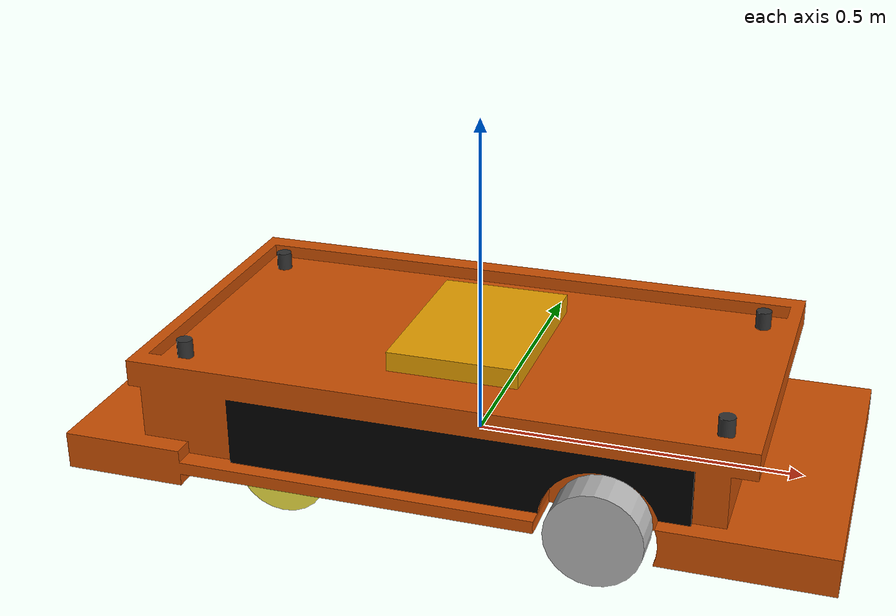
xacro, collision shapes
<?xml version="1.0" ?>
<robot name="logistic ackermann robot"
  xmlns:xacro="http://ros.org/wiki/xacro">

  <xacro:arg name="namespace" default="logistic_robot"/>
  <xacro:property name="namespace" value="$(arg namespace)"/>

  <xacro:include filename="$(find custom_robots)/models/logistic_ackermann_robot/logistic_ackermann_robot_gz.urdf.xacro"/>
  <xacro:include filename="$(find custom_robots)/models/logistic_ackermann_robot/logistic_ackermann_robot_common.urdf.xacro"/>

  <xacro:logistic_ackermann_robot namespace="${namespace}"/>
</robot>

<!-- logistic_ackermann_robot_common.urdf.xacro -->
<robot xmlns:xacro="http://ros.org/wiki/xacro">
  <xacro:include filename="$(find custom_robots)/models/logistic_ackermann_robot/logistic_ackermann_robot_gz.urdf.xacro"/>

  <xacro:macro name="logistic_ackermann_robot" params="namespace">
    <link name="base_link" />

    <link name="chassis_link">
      <inertial>
        <origin rpy="0 0 0" xyz="0.07307 -1e-06 0.65096"/>
        <mass value="1580"/>
        <inertia ixx="442.769" ixy="0" ixz="62.5206" iyy="1997.86" iyz="0" izz="2238.05"/>
      </inertial>
      <collision>
        <origin rpy="0 0 -1.5707963" xyz="0 0 0"/>
        <geometry>
          <mesh filename="$(find custom_robots)/models/logistic_ackermann_robot/meshes/chassis.dae" scale="0.5 0.5 0.5"/>
        </geometry>
        <gz>
          <surface>
            <friction>
              <ode>
                <mu>0.2</mu>
                <mu2>0.2</mu2>
              </ode>
            </friction>
          </surface>
        </gz>
      </collision>
      <visual>
        <origin rpy="0 0 -1.5707963" xyz="0 0 0"/>
        <geometry>
          <mesh filename="$(find custom_robots)/models/logistic_ackermann_robot/meshes/chassis.dae" scale="0.5 0.5 0.5"/>
        </geometry>
      </visual>
    </link>

    <joint name="chassis_link_joint" type="fixed">
      <parent link="base_link"/>
      <child link="chassis_link"/>
    </joint>

    <joint name="bl_axle" type="continuous">
      <origin rpy="0 0 0" xyz="-0.244 0.18 0"/>
      <parent link="chassis_link"/>
      <child link="back_left_wheel_link"/>
      <axis xyz="0 1 0"/>
      <limit effort="1000" velocity="100"/>
      <dynamics friction="12.0316061502"/>
    </joint>

    <link name="back_left_wheel_link">
      <inertial>
        <origin rpy="0 0 0" xyz="0 0.0377  0"/>
        <mass value="24.5"/>
        <inertia ixx="1.04961" ixy="0" ixz="0" iyy="1.84514" iyz="0" izz="1.04961"/>
      </inertial>
      <collision>
        <origin rpy="1.57 0 0" xyz="0 0 0"/>
        <geometry>
          <cylinder radius="0.072" length="0.06"/>
        </geometry>
        <gz>
          <surface>
            <friction>
              <ode>
                <mu>1e+6</mu>
                <mu2>1e+6</mu2>
              </ode>
            </friction>
          </surface>
        </gz>
      </collision>
      <visual>
        <origin rpy="0 0 -1.57" xyz="0 0 0"/>
        <geometry>
          <mesh filename="$(find custom_robots)/models/logistic_ackermann_robot/meshes/wheel.dae" scale="0.5 0.5 0.5"/>
        </geometry>
      </visual>
    </link>

    <joint name="br_axle" type="continuous">
      <origin rpy="0 0 0" xyz="-0.244 -0.18 0"/>
      <parent link="chassis_link"/>
      <child link="back_right_wheel_link"/>
      <axis xyz="0 1 0"/>
      <limit effort="1000" velocity="100"/>
      <dynamics friction="12.0316061502"/>
    </joint>

    <link name="back_right_wheel_link">
      <inertial>
        <origin rpy="0 0 0" xyz="0 0.0377  0"/>
        <mass value="24.5"/>
        <inertia ixx="1.04961" ixy="0" ixz="0" iyy="1.84514" iyz="0" izz="1.04961"/>
      </inertial>
      <collision>
        <origin rpy="1.57 0 0" xyz="0 0 0"/>
        <geometry>
          <cylinder radius="0.072" length="0.06"/>
        </geometry>
        <gz>
          <surface>
            <friction>
              <ode>
                <mu>1e+6</mu>
                <mu2>1e+6</mu2>
              </ode>
            </friction>
          </surface>
        </gz>
      </collision>
      <visual>
        <origin rpy="0 0 -1.57" xyz="0 0 0"/>
        <geometry>
          <mesh filename="$(find custom_robots)/models/logistic_ackermann_robot/meshes/wheel.dae" scale="0.5 0.5 0.5"/>
        </geometry>
      </visual>
    </link>

    <joint name="l_steer" type="revolute">
      <origin rpy="0 0 0" xyz="0.244 0.236 0"/>
      <parent link="chassis_link"/>
      <child link="l_steer_1"/>
      <axis xyz="0 0 1"/>
      <limit lower="-0.95" upper="0.95" effort="1e6" velocity="10"/>
      <dynamics friction="18.0474092253" damping="0.01"/>
    </joint>

    <link name="l_steer_1">
      <origin rpy="0 -0 0" xyz="0 0 0"/>
      <inertial>
        <origin rpy="0 0 0" xyz="0 -0.003381 0.02162"/>
        <mass value="1"/>
        <inertia ixx="1" ixy="0" ixz="0" iyy="1" iyz="0" izz="1"/>
      </inertial>
    </link>

    <joint name="front_left_wheel_joint" type="continuous">
      <parent link="l_steer_1"/>
      <child link="front_left_wheel_link"/>
      <axis xyz="0 1 0"/>
      <limit effort="1000" velocity="100"/>
      <dynamics friction="12.0316061502"/>
    </joint>

    <link name="front_left_wheel_link">
      <inertial>
        <origin rpy="0 0 0" xyz="0 0.0377  0"/>
        <mass value="24.5"/>
        <inertia ixx="1.04961" ixy="0" ixz="0" iyy="1.84514" iyz="0" izz="1.04961"/>
      </inertial>
      <collision>
        <origin rpy="1.57 0 0" xyz="0 0 0"/>
        <geometry>
          <cylinder radius="0.072" length="0.06"/>
        </geometry>
        <gz>
          <surface>
            <friction>
              <ode>
                <mu>1e+6</mu>
                <mu2>1e+6</mu2>
              </ode>
            </friction>
          </surface>
        </gz>
      </collision>
      <visual>
        <origin rpy="0 0 -1.57" xyz="0 0 0"/>
        <geometry>
          <mesh filename="$(find custom_robots)/models/logistic_ackermann_robot/meshes/wheel.dae" scale="0.5 0.5 0.5"/>
        </geometry>
      </visual>
    </link>

    <joint name="r_steer" type="revolute">
      <origin rpy="0 0 0" xyz="0.244 -0.236 0"/>
      <parent link="chassis_link"/>
      <child link="r_steer_1"/>
      <axis xyz="0 0 1"/>
      <limit lower="-0.95" upper="0.95" effort="1e6" velocity="10"/>
      <dynamics friction="18.0474092253" damping="0.01"/>
    </joint>

    <link name="r_steer_1">
      <origin rpy="0 -0 0" xyz="0 0 0"/>
      <inertial>
        <origin rpy="0 0 0" xyz="0 -0.003381 0.02162"/>
        <mass value="1"/>
        <inertia ixx="1" ixy="0" ixz="0" iyy="1" iyz="0" izz="1"/>
      </inertial>
    </link>

    <joint name="front_right_wheel_joint" type="continuous">
      <parent link="r_steer_1"/>
      <child link="front_right_wheel_link"/>
      <axis xyz="0 1 0"/>
      <limit effort="1000" velocity="100"/>
      <dynamics friction="12.0316061502"/>
    </joint>

    <link name="front_right_wheel_link">
      <inertial>
        <origin rpy="0 0 0" xyz="0 0.0377  0"/>
        <mass value="24.5"/>
        <inertia ixx="1.04961" ixy="0" ixz="0" iyy="1.84514" iyz="0" izz="1.04961"/>
      </inertial>
      <collision>
        <origin rpy="1.57 0 0" xyz="0 0 0"/>
        <geometry>
          <cylinder radius="0.072" length="0.06"/>
        </geometry>
        <gz>
          <surface>
            <friction>
              <ode>
                <mu>1e+6</mu>
                <mu2>1e+6</mu2>
              </ode>
            </friction>
          </surface>
        </gz>
      </collision>
      <visual>
        <origin rpy="0 0 -1.57" xyz="0 0 0"/>
        <geometry>
          <mesh filename="$(find custom_robots)/models/logistic_ackermann_robot/meshes/wheel.dae" scale="0.5 0.5 0.5"/>
        </geometry>
      </visual>
    </link>

    <joint name="lift_joint" type="prismatic">
      <origin rpy="0 0 0" xyz="0 0.0 0.165"/>
      <parent link="base_link"/>
      <child link="lift_link"/>
      <axis xyz="0 0 1"/>
      <limit effort="100" velocity="0.5" lower="0.0" upper="0.25"/>
      <dynamics damping="0.1" friction="0" spring_reference="0" spring_stiffness="0"/>
      <gz>
        <physics>
          <provide_feedback>1</provide_feedback>
          <ode>
            <implicit_spring_damper>0</implicit_spring_damper>
            <cfm_damping>0</cfm_damping>
            <limit>
              <cfm>0.0</cfm>
              <erp>0.2</erp>
            </limit>
          </ode>
        </physics>
      </gz>
    </joint>

    <link name="lift_link">
      <inertial>
        <mass value="0.1"/>
        <inertia ixx="0.001" ixy="0" ixz="0" iyy="0.001" iyz="0" izz="0.001"/>
      </inertial>
      <collision>
        <origin rpy="0 0 -1.5707963" xyz="0 0 0"/>
        <geometry>
          <box size="0.2805 0.2 0.03"/>
        </geometry>
        <gz>
          <surface>
            <friction>
              <ode>
                <mu>1000000</mu>
                <mu2>100000</mu2>
                <fdir1>0 0 0</fdir1>
                <slip1>0.0</slip1>
                <slip2>0.0</slip2>
              </ode>
            </friction>
            <contact>
              <ode>
                <soft_cfm>0</soft_cfm>
                <soft_erp>0.2</soft_erp>
                <kp>1e+5</kp>
                <kd>1</kd>
                <max_vel>0.01</max_vel>
                <min_depth>0.001</min_depth>
              </ode>
            </contact>
          </surface>
        </gz>
      </collision>
      <visual>
        <origin rpy="0 0 -1.5707963" xyz="0 0 0"/>
        <geometry>
          <mesh filename="$(find custom_robots)/models/logistic_ackermann_robot/meshes/platform.dae" scale="0.5 0.5 0.5"/>
        </geometry>
      </visual>
    </link>

    <xacro:velocity namespace="${namespace}"/>
    <xacro:odom namespace="${namespace}" freq="50"/>
    <xacro:joints topic="joint_state" vel_topic="platform/cmd_vel" namespace="${namespace}"/>
  </xacro:macro>
</robot>
